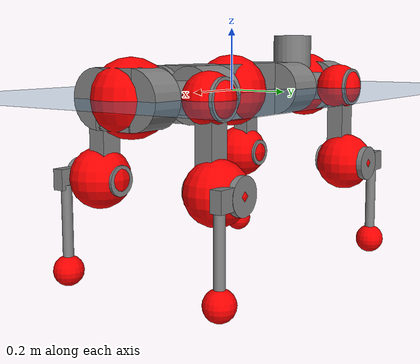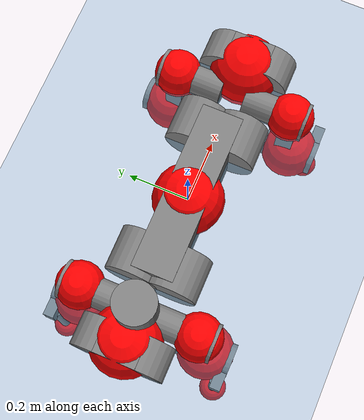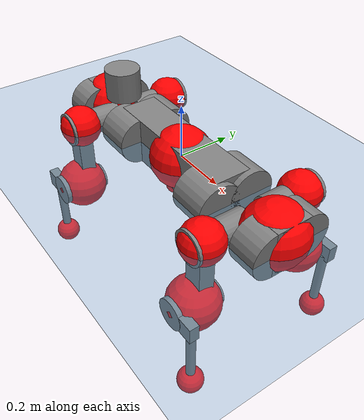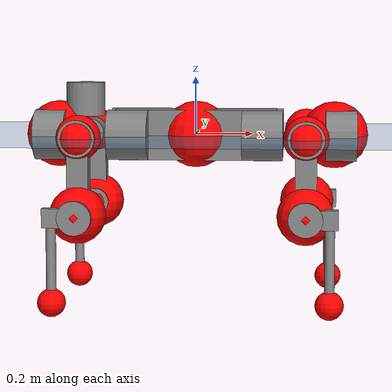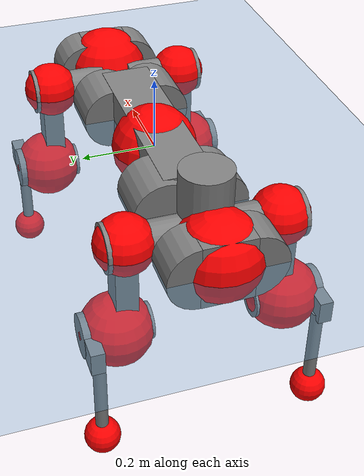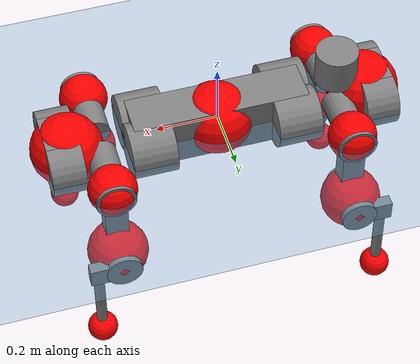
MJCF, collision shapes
<mujoco model="anymal_c">
  <compiler angle="radian" assetdir="assets" balanceinertia="true" inertiafromgeom="false"/>

  <option timestep="0.005" density="1.2" viscosity="2e-05"/>

  <size nkey="1"/>

  <visual>
    <quality shadowsize="8192"/>
    <map shadowclip="0.5"/>
  </visual>

  <default>
    <default class="/">
      <material specular="0" shininess="0.25"/>
      <geom contype="0" conaffinity="0" group="1" solref="-1000 -80"/>
      <site size="0.01 0.005 0.005" group="5"/>
      <general forcelimited="true" forcerange="-80 80" biastype="affine" gainprm="80" biasprm="0 -80 -2"/>
      <default class="anymal_c">
        <joint armature="0.01" damping="0.01" frictionloss="0.1"/>
        <default class="visual">
          <geom type="mesh" group="2"/>
          <default class="visual_zflip"/>
        </default>
        <default class="collision">
          <geom type="cylinder" group="3"/>
          <default class="foot">
            <geom size="0.03 0 0" type="sphere" condim="6" priority="1" friction="0.8 0.02 0.01" solimp="0.015 1 0.03"/>
          </default>
        </default>
      </default>
      <default class="reward_collision_sphere">
        <geom group="5" rgba="1 0 0 1"/>
      </default>
    </default>
  </default>

  <asset>
    <texture type="skybox" colorspace="auto" name="//unnamed_texture_0" builtin="gradient" rgb1="0.95 0.95 0.95" rgb2="0.95 0.95 0.95" width="100" height="600"/>
    <texture type="2d" colorspace="auto" name="texplane" builtin="checker" rgb1="0.345 0.575 0.748" rgb2="0.345 0.575 0.748" markrgb="1 1 1" width="512" height="512"/>
    <texture type="2d" colorspace="linear" name="base" file="base.png"/>
    <texture type="2d" colorspace="linear" name="top_shell" file="top_shell.png"/>
    <texture type="2d" colorspace="linear" name="bottom_shell" file="bottom_shell.png"/>
    <texture type="2d" colorspace="linear" name="remote" file="remote.png"/>
    <texture type="2d" colorspace="linear" name="hatch" file="hatch.png"/>
    <texture type="2d" colorspace="linear" name="handle" file="handle.png"/>
    <texture type="2d" colorspace="linear" name="face" file="face.png"/>
    <texture type="2d" colorspace="linear" name="battery" file="battery.png"/>
    <texture type="2d" colorspace="linear" name="lidar_cage" file="lidar_cage.png"/>
    <texture type="2d" colorspace="linear" name="depth_camera" file="depth_camera.png"/>
    <texture type="2d" colorspace="linear" name="wide_angle_camera" file="wide_angle_camera.png"/>
    <texture type="2d" colorspace="linear" name="lidar" file="lidar.png"/>
    <texture type="2d" colorspace="linear" name="drive" file="drive.png"/>
    <texture type="2d" colorspace="linear" name="hip_l" file="hip_l.png"/>
    <texture type="2d" colorspace="linear" name="shank_l" file="shank_l.png"/>
    <texture type="2d" colorspace="linear" name="foot" file="foot.png"/>
    <texture type="2d" colorspace="linear" name="thigh" file="thigh.png"/>
    <texture type="2d" colorspace="linear" name="shank_r" file="shank_r.png"/>
    <texture type="2d" colorspace="linear" name="hip_r" file="hip_r.png"/>
    <material name="MatPlane" class="/" texture="texplane" texuniform="true" texrepeat="2 2" specular="0.9" shininess="0.5"/>
    <material name="black_plastic" class="/" rgba="0.007 0.007 0.007 1"/>
    <material name="green" class="/" rgba="0.052 0.178 0.033 1"/>
    <material name="red" class="/" rgba="0.178 0.006 0.005 1"/>
    <material name="yellow" class="/" rgba="0.178 0.119 0.006 1"/>
    <material name="lwl" class="/" rgba="0.8 0.8 0.8 1"/>
    <material name="base" class="/" texture="base"/>
    <material name="top_shell" class="/" texture="top_shell"/>
    <material name="bottom_shell" class="/" texture="bottom_shell"/>
    <material name="hip_l" class="/" texture="hip_l"/>
    <material name="thigh" class="/" texture="thigh"/>
    <material name="shank_l" class="/" texture="shank_l"/>
    <material name="foot" class="/" texture="foot"/>
    <material name="hip_r" class="/" texture="hip_r"/>
    <material name="shank" class="/" texture="shank_r"/>
    <material name="hatch" class="/" texture="hatch"/>
    <material name="remote" class="/" texture="remote"/>
    <material name="handle" class="/" texture="handle"/>
    <material name="face" class="/" texture="face"/>
    <material name="depth_camera" class="/" texture="depth_camera"/>
    <material name="wide_angle_camera" class="/" texture="wide_angle_camera"/>
    <material name="battery" class="/" texture="battery"/>
    <material name="lidar_cage" class="/" texture="lidar_cage"/>
    <material name="lidar" class="/" texture="lidar"/>
    <material name="drive" class="/" texture="drive"/>
    <mesh name="base_0" class="/" file="base_0.obj"/>
    <mesh name="base_1" class="/" file="base_1.obj"/>
    <mesh name="base_2" class="/" file="base_2.obj"/>
    <mesh name="base_3" class="/" file="base_3.obj"/>
    <mesh name="base_4" class="/" file="base_4.obj"/>
    <mesh name="base_5" class="/" file="base_5.obj"/>
    <mesh name="top_shell" class="/" file="top_shell.obj"/>
    <mesh name="bottom_shell" class="/" file="bottom_shell.obj"/>
    <mesh name="remote" class="/" file="remote.obj"/>
    <mesh name="handle" class="/" file="handle.obj"/>
    <mesh name="face" class="/" file="face.obj"/>
    <mesh name="wide_angle_camera" class="/" file="wide_angle_camera.obj"/>
    <mesh name="depth_camera" class="/" file="depth_camera.obj"/>
    <mesh name="battery" class="/" file="battery.obj"/>
    <mesh name="lidar_cage" class="/" file="lidar_cage.obj"/>
    <mesh name="lidar" class="/" file="lidar.obj"/>
    <mesh name="drive" class="/" file="drive.obj"/>
    <mesh name="hip_l" class="/" file="hip_l.obj"/>
    <mesh name="thigh" class="/" file="thigh.obj"/>
    <mesh name="shank_l" class="/" file="shank_l.obj"/>
    <mesh name="foot" class="/" file="foot.obj"/>
    <mesh name="hip_r" class="/" file="hip_r.obj"/>
    <mesh name="hatch" class="/" file="hatch.obj"/>
    <mesh name="shank_r" class="/" file="shank_r.obj"/>
  </asset>

  <worldbody>
    <geom name="floor" class="/" size="100 100 0.125" type="plane" group="0" material="MatPlane"/>
    <light name="toplight_shadow" class="/" pos="0 0 5" dir="0.0990148 0.0990148 -0.990148" type="directional" ambient="0.04 0.04 0.04" diffuse="0.55 0.55 0.55" specular="0.12 0.12 0.12"/>
    <light name="toplight_fill" class="/" pos="0 0 5" dir="0.0990148 0.0990148 -0.990148" type="directional" castshadow="false" ambient="0.04 0.04 0.04" diffuse="0.3 0.3 0.3" specular="0.08 0.08 0.08"/>
    <body name="trunk" childclass="anymal_c" pos="0.00233695 -0.000824864 -0.000545587" quat="1 -0.000164371 0.000185123 -0.000399835">
      <inertial pos="0.00246694 0.000226746 0.0450885" quat="0.49994 0.500001 0.499974 0.500084" mass="17.2777" diaginertia="0.961822 0.415378 0.141042"/>
      <joint name="//unnamed_joint_0" type="free" armature="0" damping="0" frictionloss="0"/>
      <geom name="//unnamed_geom_1" class="visual" material="green" mesh="base_0"/>
      <geom name="//unnamed_geom_2" class="visual" material="yellow" mesh="base_1"/>
      <geom name="//unnamed_geom_3" class="visual" material="red" mesh="base_2"/>
      <geom name="//unnamed_geom_4" class="visual" material="black_plastic" mesh="base_3"/>
      <geom name="//unnamed_geom_5" class="visual" material="lwl" mesh="base_4"/>
      <geom name="//unnamed_geom_6" class="visual" material="base" mesh="base_5"/>
      <geom name="trunk_1" class="collision" size="0.281148 0.0678632 0.0872527" type="box"/>
      <geom name="trunk_2" class="collision" size="0.0872527 0.0702869" pos="0.233595 0.0641926 0" quat="0.707107 0 0.707107 0"/>
      <geom name="trunk_3" class="collision" size="0.0872527 0.0702869" pos="-0.233595 0.0641926 0" quat="0.707107 0 0.707107 0"/>
      <geom name="trunk_4" class="collision" size="0.0872527 0.0702869" pos="0.233595 -0.0641926 0" quat="0.707107 0 0.707107 0"/>
      <geom name="trunk_5" class="collision" size="0.0872527 0.0702869" pos="-0.233595 -0.0641926 0" quat="0.707107 0 0.707107 0"/>
      <geom name="//unnamed_geom_12" class="visual" material="top_shell" mesh="top_shell"/>
      <geom name="//unnamed_geom_13" class="visual" material="bottom_shell" mesh="bottom_shell"/>
      <geom name="//unnamed_geom_14" class="visual" material="remote" mesh="remote"/>
      <geom name="//unnamed_geom_15" class="visual" material="handle" mesh="handle"/>
      <geom name="//unnamed_geom_16" class="visual" pos="0.445173 0 0" quat="1 0 0 0" material="face" mesh="face"/>
      <geom name="trunk_6" class="collision" size="0.0533211 0.0678632 0.0872527" pos="0.504243 0 0" type="box"/>
      <geom name="//unnamed_geom_18" class="collision" size="0.0872527 0.0533211" pos="0.504243 0.0641926 0" quat="0.707107 0 0.707107 0"/>
      <geom name="//unnamed_geom_19" class="collision" size="0.0872527 0.0533211" pos="0.504243 -0.0641926 0" quat="0.707107 0 0.707107 0"/>
      <geom name="//unnamed_geom_20" class="visual" pos="0.495805 0 -0.0255974" quat="0.965926 0 0.258819 0" material="depth_camera" mesh="depth_camera"/>
      <geom name="//unnamed_geom_21" class="visual" pos="0.550962 0 0.0137333" material="wide_angle_camera" mesh="wide_angle_camera"/>
      <geom name="//unnamed_geom_22" class="visual_zflip" pos="-0.445173 0 0" quat="0 0 0 1" material="face" mesh="face"/>
      <geom name="trunk_7" class="collision" size="0.0533211 0.0678632 0.0872527" pos="-0.504243 0 0" quat="0 0 0 1" type="box"/>
      <geom name="//unnamed_geom_24" class="collision" size="0.0872527 0.0533211" pos="-0.504243 -0.0641926 0" quat="0 -0.707107 0 0.707107"/>
      <geom name="//unnamed_geom_25" class="collision" size="0.0872527 0.0533211" pos="-0.504243 0.0641926 0" quat="0 -0.707107 0 0.707107"/>
      <geom name="//unnamed_geom_26" class="visual" pos="-0.495805 0 -0.0255974" quat="0 -0.258819 0 0.965926" material="depth_camera" mesh="depth_camera"/>
      <geom name="//unnamed_geom_27" class="visual_zflip" pos="-0.550962 0 0.0137333" quat="0 0 0 1" material="wide_angle_camera" mesh="wide_angle_camera"/>
      <geom name="//unnamed_geom_28" class="visual" material="battery" mesh="battery"/>
      <geom name="//unnamed_geom_29" class="visual" pos="0 0.0680504 0.0278403" quat="0.683013 -0.183013 0.183013 0.683013" material="depth_camera" mesh="depth_camera"/>
      <geom name="//unnamed_geom_30" class="visual" pos="0 -0.0680504 0.0278403" quat="0.683013 0.183013 0.183013 -0.683013" material="depth_camera" mesh="depth_camera"/>
      <geom name="//unnamed_geom_31" class="visual" pos="-0.390936 0 0.0674279" quat="1 0 0 0" material="lidar_cage" mesh="lidar_cage"/>
      <geom name="trunk_8" class="collision" size="0.0678632 0.0581685" pos="-0.390936 0 0.122471"/>
      <geom name="//unnamed_geom_33" class="visual" pos="-0.390936 -6.16664e-05 0.130452" quat="0.707107 0 0 -0.707107" material="lidar" mesh="lidar"/>
      <geom name="//unnamed_geom_34" class="visual" pos="0.322092 0.0953719 -6.04656e-12" quat="0.258819 0.965926 0 0" material="drive" mesh="drive"/>
      <geom name="//unnamed_geom_35" class="visual" pos="0.322092 -0.0953719 6.04656e-12" quat="0.258819 -0.965926 0 0" material="drive" mesh="drive"/>
      <geom name="//unnamed_geom_36" class="visual" pos="-0.322092 0.0953719 6.04656e-12" quat="0 0 0.965926 -0.258819" material="drive" mesh="drive"/>
      <geom name="//unnamed_geom_37" class="visual" pos="-0.322092 -0.0953719 -6.04656e-12" quat="0 0 -0.965926 -0.258819" material="drive" mesh="drive"/>
      <geom name="//unnamed_geom_38" class="visual" pos="0.124584 0 0.0669693" quat="1 0 0 0" material="hatch" mesh="hatch"/>
      <geom name="//unnamed_geom_39" class="reward_collision_sphere" size="0.116337"/>
      <geom name="//unnamed_geom_40" class="reward_collision_sphere" size="0.116337" pos="0.4833 0 0"/>
      <geom name="//unnamed_geom_41" class="reward_collision_sphere" size="0.116337" pos="-0.4833 0 0"/>
      <site name="imu" pos="0.262017 0.00788814 0.0294568" size="0.00969474"/>
      <camera name="track" pos="0 -1.83407 0" quat="0.707107 0.707107 0 0" mode="trackcom"/>
      <camera name="ego_camera" pos="0.4833 0 -0.0366955" quat="-0.5 -0.5 0.5 0.5"/>
      <body name="LF_HIP" pos="0.322221 0.0959614 0.000224164" quat="0.259092 0.965852 -0.000845535 -0.000485888">
        <inertial pos="0.0583962 -0.0129107 -0.00712315" quat="-0.12805 0.709852 -0.136286 0.679072" mass="2.54769" diaginertia="0.00840835 0.00312171 0.00212493"/>
        <joint name="LF_HAA" pos="0 0 0" axis="0.999889 -0.00349068 -0.0144739" range="-0.728984 0.48804" armature="0.00843612" damping="0.0068246" frictionloss="0.0956698"/>
        <geom name="//unnamed_geom_42" class="visual" pos="0 -3.55692e-07 5.84221e-08" quat="0.258819 -0.965926 0 0" material="hip_l" mesh="hip_l"/>
        <geom name="//unnamed_geom_43" class="visual" pos="0.0643326 -0.075886 -0.0438154" quat="0.183013 -0.683013 0.683013 0.183013" material="drive" mesh="drive"/>
        <geom name="//unnamed_geom_44" class="collision" size="0.0484737 0.0678632" pos="0.0643325 -0.0109676 -0.00633456" quat="-0.353553 -0.612372 0.612372 -0.353553"/>
        <body name="LF_THIGH" pos="0.0642595 -0.0656426 -0.0392431" quat="0.182799 -0.683086 0.68303 0.182888">
          <inertial pos="0.0329269 0.000141443 -0.227935" quat="0.993098 -0.00557316 -0.0823131 0.0833716" mass="2.84974" diaginertia="0.0438474 0.0196503 0.00274735"/>
          <joint name="LF_HFE" pos="0 0 0" axis="1 -0.000349707 -0.000504083" range="-3.15971 3.13974" armature="0.0107497" damping="0.00738584" frictionloss="0.0953941"/>
          <geom name="//unnamed_geom_45" class="visual" pos="0.00312294 4.92102e-06 0" quat="0.707107 0 0 -0.707107" material="thigh" mesh="thigh"/>
          <geom name="//unnamed_geom_46" class="collision" size="0.0630158 0.038779" pos="0.04296 0 0" quat="0.5 0.5 -0.5 -0.5"/>
          <geom name="//unnamed_geom_47" class="collision" size="0.0363553 0.0290842 0.137" pos="0.03222 0 -0.12964" quat="0.707107 0 0 -0.707107" type="box"/>
          <geom name="//unnamed_geom_48" class="visual" pos="0.107722 0 -0.261455" quat="1 0 0 0" material="drive" mesh="drive"/>
          <geom name="//unnamed_geom_49" class="collision" size="0.0484737 0.0678632" pos="0.0325422 0 -0.261455" quat="0.707107 0 0.707107 0"/>
          <geom name="//unnamed_geom_50" class="reward_collision_sphere" size="0.0775579" pos="0.02685 0 0"/>
          <body name="LF_SHANK" pos="0.107931 -0.00297962 -0.260413" quat="1 -0.000140754 0.000474288 -0.000312541">
            <inertial pos="0.00555305 -0.0553083 -0.0742337" quat="0.991566 -0.126845 0.00500543 -0.0261019" mass="0.543504" diaginertia="0.0143298 0.00601848 0.000713143"/>
            <joint name="LF_KFE" pos="0 0 0" axis="0.999989 0.00165351 -0.00436999" range="-3.14668 3.14634" armature="0.00964114" damping="0.000316183" frictionloss="0.0988811"/>
            <geom name="//unnamed_geom_51" class="visual" pos="0.00101832 0.00542975 0" quat="0.707107 0 0 -0.707107" material="shank_l" mesh="shank_l"/>
            <geom name="LF_kfe_act" class="collision" size="0.0581685 0.0193895" pos="0.02148 0 0" quat="0.5 0.5 -0.5 -0.5"/>
            <geom name="//unnamed_geom_53" class="collision" size="0.0557438 0.0327198 0.01842" pos="0.02148 -0.0527287 0" quat="0.5 0.5 -0.5 -0.5" type="box"/>
            <geom name="//unnamed_geom_54" class="visual" pos="0.0140154 -0.0789036 -0.310049" quat="0.382683 0 0 -0.92388" material="foot" mesh="foot"/>
            <geom name="LF_calf" class="collision" size="0.0169658 0.13694" pos="0.0140157 -0.0806534 -0.155025" quat="0.707107 0 0 -0.707107"/>
            <geom name="LF_foot" class="foot" size="0.0305828" pos="0.0140157 -0.0806534 -0.289408" quat="0.707107 0 0 -0.707107"/>
            <geom name="//unnamed_geom_57" class="reward_collision_sphere" size="0.0969474" pos="-0.0537 0 0"/>
            <geom name="//unnamed_geom_58" class="reward_collision_sphere" size="0.0484737" pos="0.0140157 -0.0806534 -0.289408"/>
            <site name="LF_foot" class="foot" pos="0.0140157 -0.0806534 -0.289408" quat="0.707107 0 0 -0.707107" size="0.00969474"/>
          </body>
        </body>
      </body>
      <body name="RF_HIP" pos="0.319921 -0.0934405 -0.00115298" quat="0.258661 -0.965968 -0.00013974 4.76111e-05">
        <inertial pos="0.063603 0.0133061 -0.0101447" quat="0.13591 0.679612 0.130691 0.708926" mass="2.61094" diaginertia="0.00858112 0.0032549 0.00220478"/>
        <joint name="RF_HAA" pos="0 0 0" axis="0.99991 0.00811588 -0.0106668" range="-0.543484 0.723083" armature="0.00967049" damping="0.0106928" frictionloss="0.0870118"/>
        <geom name="//unnamed_geom_59" class="visual" pos="0 3.55689e-07 5.84219e-08" quat="0.258819 0.965926 0 0" material="hip_r" mesh="hip_r"/>
        <geom name="//unnamed_geom_60" class="visual" pos="0.0643325 0.075886 -0.0438154" quat="0.183013 0.683013 0.683013 -0.183013" material="drive" mesh="drive"/>
        <geom name="//unnamed_geom_61" class="collision" size="0.0484737 0.0678632" pos="0.0643325 0.0109676 -0.00633456" quat="-0.353553 0.612372 0.612372 0.353553"/>
        <body name="RF_THIGH" pos="0.0645459 0.0673074 -0.0384813" quat="0.182834 0.683061 0.68295 -0.183244">
          <inertial pos="0.0333296 0.00251833 -0.226037" quat="0.992737 -0.00527227 -0.0814605 0.0883704" mass="2.75964" diaginertia="0.0431707 0.0190624 0.00267978"/>
          <joint name="RF_HFE" pos="0 0 0" axis="0.999998 0.00134352 -0.00162672" stiffness="0.00167304" range="-3.1436 3.13646" armature="0.0102579" damping="0" frictionloss="0.0940562"/>
          <geom name="//unnamed_geom_62" class="visual" pos="0.00312294 4.92102e-06 0" quat="0.707107 0 0 -0.707107" material="thigh" mesh="thigh"/>
          <geom name="//unnamed_geom_63" class="collision" size="0.0630158 0.038779" pos="0.04296 0 0" quat="0.5 0.5 0.5 0.5"/>
          <geom name="//unnamed_geom_64" class="collision" size="0.0363553 0.0290842 0.137" pos="0.03222 0 -0.12964" quat="0.707107 0 0 0.707107" type="box"/>
          <geom name="//unnamed_geom_65" class="visual" pos="0.107722 0 -0.261455" quat="1 0 0 0" material="drive" mesh="drive"/>
          <geom name="//unnamed_geom_66" class="collision" size="0.0484737 0.0678632" pos="0.0325422 0 -0.261455" quat="0.707107 0 0.707107 0"/>
          <geom name="//unnamed_geom_67" class="reward_collision_sphere" size="0.0775579" pos="0.02685 0 0"/>
          <body name="RF_SHANK" pos="0.10788 -0.000925063 -0.25897" quat="0.999999 0.000725013 0.00107159 -0.000318742">
            <inertial pos="0.00864194 0.0553155 -0.0717026" quat="0.992937 0.11585 0.00144982 0.0255629" mass="0.523737" diaginertia="0.0145446 0.00617066 0.000753205"/>
            <joint name="RF_KFE" pos="0 0 0" axis="0.999999 0.00147439 -0.000184435" range="-3.18534 3.12559" armature="0.00964783" damping="0.0198735" frictionloss="0.10797"/>
            <geom name="//unnamed_geom_68" class="visual" pos="0.00101832 -0.00542974 0" quat="0.707107 0 0 0.707107" material="shank" mesh="shank_r"/>
            <geom name="RF_kfe_act" class="collision" size="0.0581685 0.0193895" pos="0.02148 0 0" quat="0.5 0.5 0.5 0.5"/>
            <geom name="//unnamed_geom_70" class="collision" size="0.0557438 0.0327198 0.01842" pos="0.02148 0.0527287 0" quat="0.5 0.5 0.5 0.5" type="box"/>
            <geom name="//unnamed_geom_71" class="visual" pos="0.0140159 0.0789036 -0.310049" quat="0.382683 0 0 0.92388" material="foot" mesh="foot"/>
            <geom name="RF_calf" class="collision" size="0.0169658 0.13694" pos="0.0140157 0.0806534 -0.155025" quat="0.707107 0 0 0.707107"/>
            <geom name="RF_foot" class="foot" size="0.029506" pos="0.0140157 0.0806534 -0.289408" quat="0.707107 0 0 0.707107"/>
            <geom name="//unnamed_geom_74" class="reward_collision_sphere" size="0.0969474" pos="-0.0537 0 0"/>
            <geom name="//unnamed_geom_75" class="reward_collision_sphere" size="0.0484737" pos="0.0140157 0.0806534 -0.289408"/>
            <site name="RF_foot" class="foot" pos="0.0140157 0.0806534 -0.289408" quat="0.707107 0 0 0.707107" size="0.00969474"/>
          </body>
        </body>
      </body>
      <body name="LH_HIP" pos="-0.318978 0.0936025 0.000843777" quat="0.000421349 0.000309081 0.965884 -0.258973">
        <inertial pos="0.0635626 0.0112001 -0.00778831" quat="0.124643 0.681211 0.125476 0.710402" mass="2.54841" diaginertia="0.00850008 0.00320599 0.00208565"/>
        <joint name="LH_HAA" pos="0 0 0" axis="1 -0.000116474 8.67598e-05" range="-0.472703 0.707273" armature="0.00969217" damping="0.00982463" frictionloss="0.101822"/>
        <geom name="//unnamed_geom_76" class="visual" pos="0 3.55689e-07 5.84219e-08" quat="-0.258819 -0.965926 0 0" material="hip_r" mesh="hip_r"/>
        <geom name="//unnamed_geom_77" class="visual" pos="0.0643325 0.075886 -0.0438154" quat="0.183013 0.683013 0.683013 -0.183013" material="drive" mesh="drive"/>
        <geom name="//unnamed_geom_78" class="collision" size="0.0484737 0.0678632" pos="0.0643325 0.0109676 -0.00633456" quat="-0.353553 0.612372 0.612372 0.353553"/>
        <body name="LH_THIGH" pos="0.0636862 0.0662292 -0.0387275" quat="0.18303 0.683015 0.683074 -0.182756">
          <inertial pos="0.0324211 0.00248288 -0.224591" quat="0.992622 -0.00651957 -0.0873712 0.0838217" mass="2.81712" diaginertia="0.0433663 0.0198463 0.00267294"/>
          <joint name="LH_HFE" pos="0 0 0" axis="0.999941 0.00542503 0.00945197" range="-3.11979 3.15471" armature="0.0109392" damping="0.0042791" frictionloss="0.107064"/>
          <geom name="//unnamed_geom_79" class="visual" pos="0.00312294 4.92102e-06 0" quat="0.707107 0 0 -0.707107" material="thigh" mesh="thigh"/>
          <geom name="//unnamed_geom_80" class="collision" size="0.0630158 0.038779" pos="0.04296 0 0" quat="0.5 0.5 -0.5 -0.5"/>
          <geom name="//unnamed_geom_81" class="collision" size="0.0363553 0.0290842 0.137" pos="0.03222 0 -0.12964" quat="0.707107 0 0 -0.707107" type="box"/>
          <geom name="//unnamed_geom_82" class="visual" pos="0.107722 0 -0.261455" quat="1 0 0 0" material="drive" mesh="drive"/>
          <geom name="//unnamed_geom_83" class="collision" size="0.0484737 0.0678632" pos="0.0325422 0 -0.261455" quat="0.707107 0 0.707107 0"/>
          <geom name="//unnamed_geom_84" class="reward_collision_sphere" size="0.0775579" pos="0.02685 0 0"/>
          <body name="LH_SHANK" pos="0.107441 0.00120772 -0.264499" quat="0.999999 0.00135313 -4.17515e-05 -0.000488947">
            <inertial pos="0.00623871 0.0561707 -0.0713461" quat="0.992884 0.116387 -0.00076136 0.0252061" mass="0.517833" diaginertia="0.0144462 0.00600359 0.000725747"/>
            <joint name="LH_KFE" pos="0 0 0" axis="0.999981 -0.0024843 0.00567938" range="-3.15822 3.12431" armature="0.0092406" damping="0.00720551" frictionloss="0.0885434"/>
            <geom name="//unnamed_geom_85" class="visual" pos="0.00101832 -0.00542974 0" quat="-0.707107 0 0 -0.707107" material="shank" mesh="shank_r"/>
            <geom name="LH_kfe_act" class="collision" size="0.0581685 0.0193895" pos="0.02148 0 0" quat="0.5 0.5 -0.5 -0.5"/>
            <geom name="//unnamed_geom_87" class="collision" size="0.0557438 0.0327198 0.01842" pos="0.02148 0.0527287 0" quat="0.5 0.5 -0.5 -0.5" type="box"/>
            <geom name="//unnamed_geom_88" class="visual" pos="0.0140159 0.0789036 -0.310049" quat="-0.382683 0 0 -0.92388" material="foot" mesh="foot"/>
            <geom name="LH_calf" class="collision" size="0.0169658 0.13694" pos="0.0140157 0.0806534 -0.155025" quat="0.707107 0 0 -0.707107"/>
            <geom name="LH_foot" class="foot" size="0.0281469" pos="0.0140157 0.0806534 -0.289408" quat="0.707107 0 0 -0.707107"/>
            <geom name="//unnamed_geom_91" class="reward_collision_sphere" size="0.0969474" pos="-0.0537 0 0"/>
            <geom name="//unnamed_geom_92" class="reward_collision_sphere" size="0.0484737" pos="0.0140157 0.0806534 -0.289408"/>
            <site name="LH_foot" class="foot" pos="0.0140157 0.0806534 -0.289408" quat="0.707107 0 0 -0.707107" size="0.00969474"/>
          </body>
        </body>
      </body>
      <body name="RH_HIP" pos="-0.324553 -0.0963397 0.00049395" quat="1.02244e-05 -5.8141e-05 -0.966057 -0.258331">
        <inertial pos="0.0622763 -0.0141549 -0.00768524" quat="-0.125185 0.717138 -0.126694 0.673788" mass="2.5477" diaginertia="0.00846117 0.0032469 0.00217079"/>
        <joint name="RH_HAA" pos="0 0 0" axis="0.9999 -0.00165887 0.0140218" stiffness="0.00234831" range="-0.719954 0.471987" armature="0.0100647" damping="0.00927738" frictionloss="0.0968892"/>
        <geom name="//unnamed_geom_93" class="visual" pos="0 -3.55692e-07 5.84221e-08" quat="-0.258819 0.965926 0 0" material="hip_l" mesh="hip_l"/>
        <geom name="//unnamed_geom_94" class="visual" pos="0.0643326 -0.075886 -0.0438154" quat="-0.183013 0.683013 -0.683013 -0.183013" material="drive" mesh="drive"/>
        <geom name="//unnamed_geom_95" class="collision" size="0.0484737 0.0678632" pos="0.0643325 -0.0109676 -0.00633456" quat="0.353553 0.612372 -0.612372 0.353553"/>
        <body name="RH_THIGH" pos="0.063865 -0.0657091 -0.0363471" quat="-0.183184 0.683237 -0.682698 -0.18318">
          <inertial pos="0.0322333 -0.000552685 -0.226253" quat="0.994405 0.000742498 -0.0701035 0.0790134" mass="2.82064" diaginertia="0.0428302 0.0197979 0.00279801"/>
          <joint name="RH_HFE" pos="0 0 0" axis="0.999997 -0.00119553 0.00197614" range="-3.14467 3.12666" armature="0.010593" damping="0" frictionloss="0.0978701"/>
          <geom name="//unnamed_geom_96" class="visual" pos="0.00312294 4.92102e-06 0" quat="0.707107 0 0 -0.707107" material="thigh" mesh="thigh"/>
          <geom name="//unnamed_geom_97" class="collision" size="0.0630158 0.038779" pos="0.04296 0 0" quat="0.5 0.5 0.5 0.5"/>
          <geom name="//unnamed_geom_98" class="collision" size="0.0363553 0.0290842 0.137" pos="0.03222 0 -0.12964" quat="0.707107 0 0 0.707107" type="box"/>
          <geom name="//unnamed_geom_99" class="visual" pos="0.107722 0 -0.261455" quat="1 0 0 0" material="drive" mesh="drive"/>
          <geom name="//unnamed_geom_100" class="collision" size="0.0484737 0.0678632" pos="0.0325422 0 -0.261455" quat="0.707107 0 0.707107 0"/>
          <geom name="//unnamed_geom_101" class="reward_collision_sphere" size="0.0775579" pos="0.02685 0 0"/>
          <body name="RH_SHANK" pos="0.10795 -6.55334e-05 -0.26125" quat="1 5.11311e-05 -5.05624e-05 -6.82294e-05">
            <inertial pos="0.00367427 -0.0586815 -0.071517" quat="0.993254 -0.113246 -0.00145951 -0.0248775" mass="0.547473" diaginertia="0.0142716 0.00612559 0.000725691"/>
            <joint name="RH_KFE" pos="0 0 0" axis="0.99998 -0.00523337 -0.00342217" stiffness="0.00171795" range="-3.10731 3.18624" armature="0.00967295" damping="0.00440784" frictionloss="0.109463"/>
            <geom name="//unnamed_geom_102" class="visual" pos="0.00101832 0.00542975 0" quat="0.707107 0 0 -0.707107" material="shank_l" mesh="shank_l"/>
            <geom name="RH_kfe_act" class="collision" size="0.0581685 0.0193895" pos="0.02148 0 0" quat="0.5 0.5 0.5 0.5"/>
            <geom name="//unnamed_geom_104" class="collision" size="0.0557438 0.0327198 0.01842" pos="0.02148 -0.0527287 0" quat="0.5 0.5 0.5 0.5" type="box"/>
            <geom name="//unnamed_geom_105" class="visual" pos="0.0140154 -0.0789036 -0.310049" quat="0.382683 0 0 -0.92388" material="foot" mesh="foot"/>
            <geom name="RH_calf" class="collision" size="0.0169658 0.13694" pos="0.0140157 -0.0806534 -0.155025" quat="0.707107 0 0 0.707107"/>
            <geom name="RH_foot" class="foot" size="0.0293463" pos="0.0140157 -0.0806534 -0.289408" quat="0.707107 0 0 0.707107"/>
            <geom name="//unnamed_geom_108" class="reward_collision_sphere" size="0.0969474" pos="-0.0537 0 0"/>
            <geom name="//unnamed_geom_109" class="reward_collision_sphere" size="0.0484737" pos="0.0140157 -0.0806534 -0.289408"/>
            <site name="RH_foot" class="foot" pos="0.0140157 -0.0806534 -0.289408" quat="0.707107 0 0 0.707107" size="0.00969474"/>
          </body>
        </body>
      </body>
    </body>
  </worldbody>

  <contact>
    <pair class="/" geom1="floor" geom2="LF_foot" name="//unnamed_contact_0"/>
    <pair class="/" geom1="floor" geom2="RF_foot" name="//unnamed_contact_1"/>
    <pair class="/" geom1="floor" geom2="LH_foot" name="//unnamed_contact_2"/>
    <pair class="/" geom1="floor" geom2="RH_foot" name="//unnamed_contact_3"/>
  </contact>

  <actuator>
    <general name="LF_HAA" class="/" joint="LF_HAA" forcerange="-78.3611 78.3611" gainprm="78.5514" biasprm="0 -78.5514 -1.91761"/>
    <general name="LF_HFE" class="/" joint="LF_HFE" forcerange="-71.7883 71.7883" gainprm="78.5514" biasprm="0 -78.5514 -1.91761"/>
    <general name="LF_KFE" class="/" joint="LF_KFE" forcerange="-76.4293 76.4293" gainprm="78.5514" biasprm="0 -78.5514 -1.91761"/>
    <general name="RF_HAA" class="/" joint="RF_HAA" forcerange="-77.8015 77.8015" gainprm="78.5514" biasprm="0 -78.5514 -1.91761"/>
    <general name="RF_HFE" class="/" joint="RF_HFE" forcerange="-77.2035 77.2035" gainprm="78.5514" biasprm="0 -78.5514 -1.91761"/>
    <general name="RF_KFE" class="/" joint="RF_KFE" forcerange="-79.4917 79.4917" gainprm="78.5514" biasprm="0 -78.5514 -1.91761"/>
    <general name="LH_HAA" class="/" joint="LH_HAA" forcerange="-78.5382 78.5382" gainprm="78.5514" biasprm="0 -78.5514 -1.91761"/>
    <general name="LH_HFE" class="/" joint="LH_HFE" forcerange="-80.4971 80.4971" gainprm="78.5514" biasprm="0 -78.5514 -1.91761"/>
    <general name="LH_KFE" class="/" joint="LH_KFE" forcerange="-78.6003 78.6003" gainprm="78.5514" biasprm="0 -78.5514 -1.91761"/>
    <general name="RH_HAA" class="/" joint="RH_HAA" forcerange="-77.1356 77.1356" gainprm="78.5514" biasprm="0 -78.5514 -1.91761"/>
    <general name="RH_HFE" class="/" joint="RH_HFE" forcerange="-74.6863 74.6863" gainprm="78.5514" biasprm="0 -78.5514 -1.91761"/>
    <general name="RH_KFE" class="/" joint="RH_KFE" forcerange="-70.05 70.05" gainprm="78.5514" biasprm="0 -78.5514 -1.91761"/>
  </actuator>

  <sensor>
    <gyro site="imu" name="imu_angular_velocity"/>
    <velocimeter site="imu" name="imu_linear_velocity"/>
    <framelinvel objtype="site" objname="LF_foot" name="LF_foot_global_linear_velocity"/>
    <framelinvel objtype="site" objname="RF_foot" name="RF_foot_global_linear_velocity"/>
    <framelinvel objtype="site" objname="LH_foot" name="LH_foot_global_linear_velocity"/>
    <framelinvel objtype="site" objname="RH_foot" name="RH_foot_global_linear_velocity"/>
  </sensor>

  <keyframe>
    <key name="home" qpos="0 0 0.55 1 0 0 0 0 0.4 -0.8 0 -0.4 0.8 0 -0.4 0.8 0 0.4 -0.8"/>
  </keyframe>
</mujoco>
